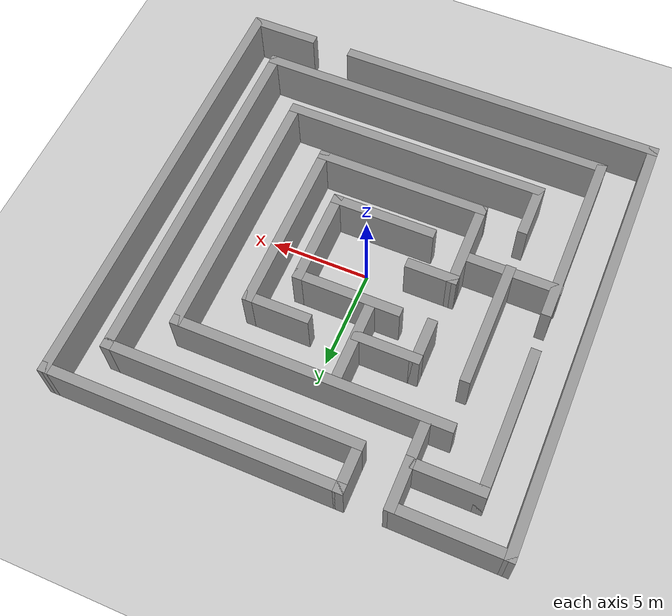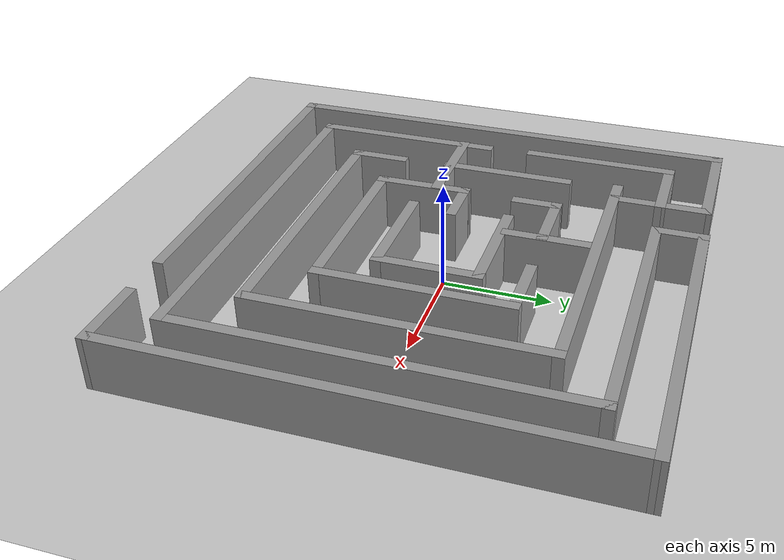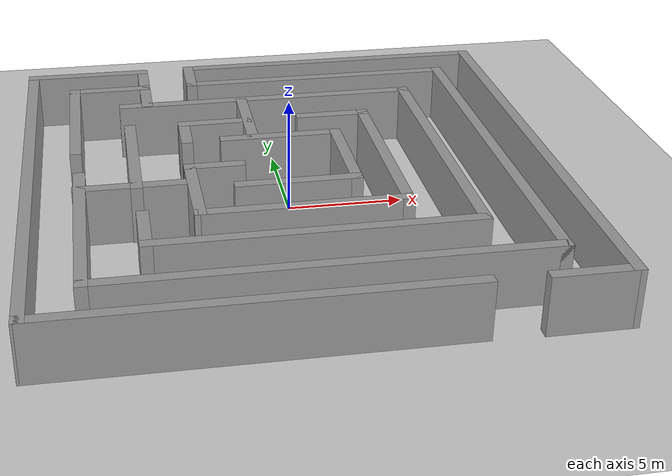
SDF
<sdf version="1.7">
 <world name="default">
  <light name="sun" type="directional">
   <pose>0 0 10 0 -0 0</pose>
   <diffuse>0.8 0.8 0.8 1</diffuse>
   <specular>0.2 0.2 0.2 1</specular>
   <attenuation>
    <range>1000</range>
    <constant>0.9</constant>
    <linear>0.01</linear>
    <quadratic>0.001</quadratic>
   </attenuation>
   <direction>-0.5 0.1 -0.9</direction>
   <spot><inner_angle>0</inner_angle><outer_angle>0</outer_angle><falloff>0</falloff></spot>
  </light>
  <model name="ground_plane">
   <static>1</static>
   <link name="link">
    <collision name="collision">
     <geometry><plane><normal>0 0 1</normal><size>100 100</size></plane></geometry>
     <surface>
      <contact><collide_bitmask>65535</collide_bitmask></contact>
      <friction><ode><mu>100</mu><mu2>50</mu2></ode></friction>
     </surface>
    </collision>
    <visual name="visual">
     <cast_shadows>0</cast_shadows>
     <geometry><plane><normal>0 0 1</normal><size>100 100</size></plane></geometry>
     <material>
      <script><uri>file://media/materials/scripts/gazebo.material</uri><name>Gazebo/Grey</name></script>
     </material>
    </visual>
   </link>
  </model>
  <gravity>0 0 -9.8</gravity>
  <magnetic_field>6e-06 2.3e-05 -4.2e-05</magnetic_field>
  <atmosphere type="adiabatic"/>
  <physics type="ode">
   <max_step_size>0.001</max_step_size>
   <real_time_factor>1</real_time_factor>
   <real_time_update_rate>1000</real_time_update_rate>
  </physics>
  <scene><ambient>0.4 0.4 0.4 1</ambient><background>0.7 0.7 0.7 1</background><shadows>1</shadows></scene>
  <spherical_coordinates>
   <surface_model>EARTH_WGS84</surface_model>
   <latitude_deg>0</latitude_deg>
   <longitude_deg>0</longitude_deg>
   <elevation>0</elevation>
   <heading_deg>0</heading_deg>
  </spherical_coordinates>
  <model name="maze_1">
   <model name="maze_1">
    <link name="Wall_1">
     <collision name="Wall_1_Collision">
      <geometry><box><size>5.43 0.5 2.5</size></box></geometry>
      <pose>0 0 1.25 0 -0 0</pose>
     </collision>
     <visual name="Wall_1_Visual">
      <pose>0 0 1.25 0 -0 0</pose>
      <geometry><box><size>5.43 0.5 2.5</size></box></geometry>
      <material>
       <script><uri>file://media/materials/scripts/gazebo.material</uri><name>Gazebo/Grey</name></script>
       <ambient>1 1 1 1</ambient>
      </material>
      <meta><layer>0</layer></meta>
     </visual>
     <pose>0.007699 2.3205 0 0 -0 0</pose>
    </link>
    <link name="Wall_10">
     <collision name="Wall_10_Collision">
      <geometry><box><size>2.59977 0.5 2.5</size></box></geometry>
      <pose>0 0 1.25 0 -0 0</pose>
     </collision>
     <visual name="Wall_10_Visual">
      <pose>0 0 1.25 0 -0 0</pose>
      <geometry><box><size>2.59977 0.5 2.5</size></box></geometry>
      <material>
       <script><uri>file://media/materials/scripts/gazebo.material</uri><name>Gazebo/Grey</name></script>
       <ambient>1 1 1 1</ambient>
      </material>
      <meta><layer>0</layer></meta>
     </visual>
     <pose>-3.2283 -0.2365 0 0 -0 3.14159</pose>
    </link>
    <link name="Wall_11">
     <collision name="Wall_11_Collision">
      <geometry><box><size>4.60034 0.5 2.5</size></box></geometry>
      <pose>0 0 1.25 0 -0 0</pose>
     </collision>
     <visual name="Wall_11_Visual">
      <pose>0 0 1.25 0 -0 0</pose>
      <geometry><box><size>4.60034 0.5 2.5</size></box></geometry>
      <material>
       <script><uri>file://media/materials/scripts/gazebo.material</uri><name>Gazebo/Grey</name></script>
       <ambient>1 1 1 1</ambient>
      </material>
      <meta><layer>0</layer></meta>
     </visual>
     <pose>-4.2518 -2.2865 0 0 -0 -1.55787</pose>
    </link>
    <link name="Wall_12">
     <collision name="Wall_12_Collision">
      <geometry><box><size>8.85013 0.5 2.5</size></box></geometry>
      <pose>0 0 1.25 0 -0 0</pose>
     </collision>
     <visual name="Wall_12_Visual">
      <pose>0 0 1.25 0 -0 0</pose>
      <geometry><box><size>8.85013 0.5 2.5</size></box></geometry>
      <material>
       <script><uri>file://media/materials/scripts/gazebo.material</uri><name>Gazebo/Grey</name></script>
       <ambient>1 1 1 1</ambient>
      </material>
      <meta><layer>0</layer></meta>
     </visual>
     <pose>-0.050301 -4.3365 0 0 -0 0</pose>
    </link>
    <link name="Wall_13">
     <collision name="Wall_13_Collision">
      <geometry><box><size>9.10033 0.5 2.5</size></box></geometry>
      <pose>0 0 1.25 0 -0 0</pose>
     </collision>
     <visual name="Wall_13_Visual">
      <pose>0 0 1.25 0 -0 0</pose>
      <geometry><box><size>9.10033 0.5 2.5</size></box></geometry>
      <material>
       <script><uri>file://media/materials/scripts/gazebo.material</uri><name>Gazebo/Grey</name></script>
       <ambient>1 1 1 1</ambient>
      </material>
      <meta><layer>0</layer></meta>
     </visual>
     <pose>4.1247 -0.0365 0 0 -0 1.5708</pose>
    </link>
    <link name="Wall_14">
     <collision name="Wall_14_Collision">
      <geometry><box><size>3.34987 0.5 2.5</size></box></geometry>
      <pose>0 0 1.25 0 -0 0</pose>
     </collision>
     <visual name="Wall_14_Visual">
      <pose>0 0 1.25 0 -0 0</pose>
      <geometry><box><size>3.34987 0.5 2.5</size></box></geometry>
      <material>
       <script><uri>file://media/materials/scripts/gazebo.material</uri><name>Gazebo/Grey</name></script>
       <ambient>1 1 1 1</ambient>
      </material>
      <meta><layer>0</layer></meta>
     </visual>
     <pose>2.6997 4.2635 0 0 -0 3.14159</pose>
    </link>
    <link name="Wall_16">
     <collision name="Wall_16_Collision">
      <geometry><box><size>2.35 0.5 2.5</size></box></geometry>
      <pose>0 0 1.25 0 -0 0</pose>
     </collision>
     <visual name="Wall_16_Visual">
      <pose>0 0 1.25 0 -0 0</pose>
      <geometry><box><size>2.35 0.5 2.5</size></box></geometry>
      <material>
       <script><uri>file://media/materials/scripts/gazebo.material</uri><name>Gazebo/Grey</name></script>
       <ambient>1 1 1 1</ambient>
      </material>
      <meta><layer>0</layer></meta>
     </visual>
     <pose>-4.1623 3.2805 0 0 -0 1.5708</pose>
    </link>
    <link name="Wall_17">
     <collision name="Wall_17_Collision">
      <geometry><box><size>3.35048 0.5 2.5</size></box></geometry>
      <pose>0 0 1.25 0 -0 0</pose>
     </collision>
     <visual name="Wall_17_Visual">
      <pose>0 0 1.25 0 -0 0</pose>
      <geometry><box><size>3.35048 0.5 2.5</size></box></geometry>
      <material>
       <script><uri>file://media/materials/scripts/gazebo.material</uri><name>Gazebo/Grey</name></script>
       <ambient>1 1 1 1</ambient>
      </material>
      <meta><layer>0</layer></meta>
     </visual>
     <pose>-2.7373 4.2055 0 0 -0 0</pose>
    </link>
    <link name="Wall_19">
     <collision name="Wall_19_Collision">
      <geometry><box><size>4.35048 0.5 2.5</size></box></geometry>
      <pose>0 0 1.25 0 -0 0</pose>
     </collision>
     <visual name="Wall_19_Visual">
      <pose>0 0 1.25 0 -0 0</pose>
      <geometry><box><size>4.35048 0.5 2.5</size></box></geometry>
      <material>
       <script><uri>file://media/materials/scripts/gazebo.material</uri><name>Gazebo/Grey</name></script>
       <ambient>1 1 1 1</ambient>
      </material>
      <meta><layer>0</layer></meta>
     </visual>
     <pose>-1.2263 4.5185 0 0 -0 1.5708</pose>
    </link>
    <link name="Wall_2">
     <collision name="Wall_2_Collision">
      <geometry><box><size>5.01231 0.5 2.5</size></box></geometry>
      <pose>0 0 1.25 0 -0 0</pose>
     </collision>
     <visual name="Wall_2_Visual">
      <pose>0 0 1.25 0 -0 0</pose>
      <geometry><box><size>5.01231 0.5 2.5</size></box></geometry>
      <material>
       <script><uri>file://media/materials/scripts/gazebo.material</uri><name>Gazebo/Grey</name></script>
       <ambient>1 1 1 1</ambient>
      </material>
      <meta><layer>0</layer></meta>
     </visual>
     <pose>2.4727 0.0645 0 0 -0 -1.5708</pose>
    </link>
    <link name="Wall_21">
     <collision name="Wall_21_Collision">
      <geometry><box><size>7.35 0.5 2.5</size></box></geometry>
      <pose>0 0 1.25 0 -0 0</pose>
     </collision>
     <visual name="Wall_21_Visual">
      <pose>0 0 1.25 0 -0 0</pose>
      <geometry><box><size>7.35 0.5 2.5</size></box></geometry>
      <material>
       <script><uri>file://media/materials/scripts/gazebo.material</uri><name>Gazebo/Grey</name></script>
       <ambient>1 1 1 1</ambient>
      </material>
      <meta><layer>0</layer></meta>
     </visual>
     <pose>-9.0023 5.3845 0 0 -0 1.5708</pose>
    </link>
    <link name="Wall_22">
     <collision name="Wall_22_Collision">
      <geometry><box><size>3.85 0.5 2.5</size></box></geometry>
      <pose>0 0 1.25 0 -0 0</pose>
     </collision>
     <visual name="Wall_22_Visual">
      <pose>0 0 1.25 0 -0 0</pose>
      <geometry><box><size>3.85 0.5 2.5</size></box></geometry>
      <material>
       <script><uri>file://media/materials/scripts/gazebo.material</uri><name>Gazebo/Grey</name></script>
       <ambient>1 1 1 1</ambient>
      </material>
      <meta><layer>0</layer></meta>
     </visual>
     <pose>-7.3273 8.8095 0 0 -0 0</pose>
    </link>
    <link name="Wall_23">
     <collision name="Wall_23_Collision">
      <geometry><box><size>2.60032 0.5 2.5</size></box></geometry>
      <pose>0 0 1.25 0 -0 0</pose>
     </collision>
     <visual name="Wall_23_Visual">
      <pose>0 0 1.25 0 -0 0</pose>
      <geometry><box><size>2.60032 0.5 2.5</size></box></geometry>
      <material>
       <script><uri>file://media/materials/scripts/gazebo.material</uri><name>Gazebo/Grey</name></script>
       <ambient>1 1 1 1</ambient>
      </material>
      <meta><layer>0</layer></meta>
     </visual>
     <pose>-5.6523 7.7595 0 0 -0 -1.5708</pose>
    </link>
    <link name="Wall_25">
     <collision name="Wall_25_Collision">
      <geometry><box><size>2.59969 0.5 2.5</size></box></geometry>
      <pose>0 0 1.25 0 -0 0</pose>
     </collision>
     <visual name="Wall_25_Visual">
      <pose>0 0 1.25 0 -0 0</pose>
      <geometry><box><size>2.59969 0.5 2.5</size></box></geometry>
      <material>
       <script><uri>file://media/materials/scripts/gazebo.material</uri><name>Gazebo/Grey</name></script>
       <ambient>1 1 1 1</ambient>
      </material>
      <meta><layer>0</layer></meta>
     </visual>
     <pose>-5.6523 9.8595 0 0 -0 1.5708</pose>
    </link>
    <link name="Wall_26">
     <collision name="Wall_26_Collision">
      <geometry><box><size>5.82705 0.5 2.5</size></box></geometry>
      <pose>0 0 1.25 0 -0 0</pose>
     </collision>
     <visual name="Wall_26_Visual">
      <pose>0 0 1.25 0 -0 0</pose>
      <geometry><box><size>5.82705 0.5 2.5</size></box></geometry>
      <material>
       <script><uri>file://media/materials/scripts/gazebo.material</uri><name>Gazebo/Grey</name></script>
       <ambient>1 1 1 1</ambient>
      </material>
      <meta><layer>0</layer></meta>
     </visual>
     <pose>-8.3158 10.921 0 0 -0 3.13727</pose>
    </link>
    <link name="Wall_27">
     <collision name="Wall_27_Collision">
      <geometry><box><size>22.3506 0.5 2.5</size></box></geometry>
      <pose>0 0 1.25 0 -0 0</pose>
     </collision>
     <visual name="Wall_27_Visual">
      <pose>0 0 1.25 0 -0 0</pose>
      <geometry><box><size>22.3506 0.5 2.5</size></box></geometry>
      <material>
       <script><uri>file://media/materials/scripts/gazebo.material</uri><name>Gazebo/Grey</name></script>
       <ambient>1 1 1 1</ambient>
      </material>
      <meta><layer>0</layer></meta>
     </visual>
     <pose>-10.9793 0.007 0 0 -0 -1.5708</pose>
    </link>
    <link name="Wall_28">
     <collision name="Wall_28_Collision">
      <geometry><box><size>16.8271 0.5 2.5</size></box></geometry>
      <pose>0 0 1.25 0 -0 0</pose>
     </collision>
     <visual name="Wall_28_Visual">
      <pose>0 0 1.25 0 -0 0</pose>
      <geometry><box><size>16.8271 0.5 2.5</size></box></geometry>
      <material>
       <script><uri>file://media/materials/scripts/gazebo.material</uri><name>Gazebo/Grey</name></script>
       <ambient>1 1 1 1</ambient>
      </material>
      <meta><layer>0</layer></meta>
     </visual>
     <pose>-2.8158 -10.9295 0 0 -0 -0.001347</pose>
    </link>
    <link name="Wall_3">
     <collision name="Wall_3_Collision">
      <geometry><box><size>5.35 0.5 2.5</size></box></geometry>
      <pose>0 0 1.25 0 -0 0</pose>
     </collision>
     <visual name="Wall_3_Visual">
      <pose>0 0 1.25 0 -0 0</pose>
      <geometry><box><size>5.35 0.5 2.5</size></box></geometry>
      <material>
       <script><uri>file://media/materials/scripts/gazebo.material</uri><name>Gazebo/Grey</name></script>
       <ambient>1 1 1 1</ambient>
      </material>
      <meta><layer>0</layer></meta>
     </visual>
     <pose>0.047699 -2.1915 0 0 -0 3.14159</pose>
    </link>
    <link name="Wall_30">
     <collision name="Wall_30_Collision">
      <geometry><box><size>9.1 0.5 2.5</size></box></geometry>
      <pose>0 0 1.25 0 -0 0</pose>
     </collision>
     <visual name="Wall_30_Visual">
      <pose>0 0 1.25 0 -0 0</pose>
      <geometry><box><size>9.1 0.5 2.5</size></box></geometry>
      <material>
       <script><uri>file://media/materials/scripts/gazebo.material</uri><name>Gazebo/Grey</name></script>
       <ambient>1 1 1 1</ambient>
      </material>
      <meta><layer>0</layer></meta>
     </visual>
     <pose>-8.8703 -4.6415 0 0 -0 -1.5708</pose>
    </link>
    <link name="Wall_31">
     <collision name="Wall_31_Collision">
      <geometry><box><size>18.35 0.5 2.5</size></box></geometry>
      <pose>0 0 1.25 0 -0 0</pose>
     </collision>
     <visual name="Wall_31_Visual">
      <pose>0 0 1.25 0 -0 0</pose>
      <geometry><box><size>18.35 0.5 2.5</size></box></geometry>
      <material>
       <script><uri>file://media/materials/scripts/gazebo.material</uri><name>Gazebo/Grey</name></script>
       <ambient>1 1 1 1</ambient>
      </material>
      <meta><layer>0</layer></meta>
     </visual>
     <pose>0.054699 -8.9415 0 0 -0 0</pose>
    </link>
    <link name="Wall_32">
     <collision name="Wall_32_Collision">
      <geometry><box><size>18.35 0.5 2.5</size></box></geometry>
      <pose>0 0 1.25 0 -0 0</pose>
     </collision>
     <visual name="Wall_32_Visual">
      <pose>0 0 1.25 0 -0 0</pose>
      <geometry><box><size>18.35 0.5 2.5</size></box></geometry>
      <material>
       <script><uri>file://media/materials/scripts/gazebo.material</uri><name>Gazebo/Grey</name></script>
       <ambient>1 1 1 1</ambient>
      </material>
      <meta><layer>0</layer></meta>
     </visual>
     <pose>8.9797 -0.0165 0 0 -0 1.5708</pose>
    </link>
    <link name="Wall_33">
     <collision name="Wall_33_Collision">
      <geometry><box><size>12.85 0.5 2.5</size></box></geometry>
      <pose>0 0 1.25 0 -0 0</pose>
     </collision>
     <visual name="Wall_33_Visual">
      <pose>0 0 1.25 0 -0 0</pose>
      <geometry><box><size>12.85 0.5 2.5</size></box></geometry>
      <material>
       <script><uri>file://media/materials/scripts/gazebo.material</uri><name>Gazebo/Grey</name></script>
       <ambient>1 1 1 1</ambient>
      </material>
      <meta><layer>0</layer></meta>
     </visual>
     <pose>2.8047 8.9085 0 0 -0 3.14159</pose>
    </link>
    <link name="Wall_34">
     <collision name="Wall_34_Collision">
      <geometry><box><size>2.6 0.5 2.5</size></box></geometry>
      <pose>0 0 1.25 0 -0 0</pose>
     </collision>
     <visual name="Wall_34_Visual">
      <pose>0 0 1.25 0 -0 0</pose>
      <geometry><box><size>2.6 0.5 2.5</size></box></geometry>
      <material>
       <script><uri>file://media/materials/scripts/gazebo.material</uri><name>Gazebo/Grey</name></script>
       <ambient>1 1 1 1</ambient>
      </material>
      <meta><layer>0</layer></meta>
     </visual>
     <pose>-3.3703 9.9585 0 0 -0 1.5708</pose>
    </link>
    <link name="Wall_35">
     <collision name="Wall_35_Collision">
      <geometry><box><size>14.85 0.5 2.5</size></box></geometry>
      <pose>0 0 1.25 0 -0 0</pose>
     </collision>
     <visual name="Wall_35_Visual">
      <pose>0 0 1.25 0 -0 0</pose>
      <geometry><box><size>14.85 0.5 2.5</size></box></geometry>
      <material>
       <script><uri>file://media/materials/scripts/gazebo.material</uri><name>Gazebo/Grey</name></script>
       <ambient>1 1 1 1</ambient>
      </material>
      <meta><layer>0</layer></meta>
     </visual>
     <pose>3.8047 11.0085 0 0 -0 0</pose>
    </link>
    <link name="Wall_36">
     <collision name="Wall_36_Collision">
      <geometry><box><size>22.5171 0.5 2.5</size></box></geometry>
      <pose>0 0 1.25 0 -0 0</pose>
     </collision>
     <visual name="Wall_36_Visual">
      <pose>0 0 1.25 0 -0 0</pose>
      <geometry><box><size>22.5171 0.5 2.5</size></box></geometry>
      <material>
       <script><uri>file://media/materials/scripts/gazebo.material</uri><name>Gazebo/Grey</name></script>
       <ambient>1 1 1 1</ambient>
      </material>
      <meta><layer>0</layer></meta>
     </visual>
     <pose>10.9497 -0 0 0 -0 -1.57352</pose>
    </link>
    <link name="Wall_37">
     <collision name="Wall_37_Collision">
      <geometry><box><size>3.60011 0.5 2.5</size></box></geometry>
      <pose>0 0 1.25 0 -0 0</pose>
     </collision>
     <visual name="Wall_37_Visual">
      <pose>0 0 1.25 0 -0 0</pose>
      <geometry><box><size>3.60011 0.5 2.5</size></box></geometry>
      <material>
       <script><uri>file://media/materials/scripts/gazebo.material</uri><name>Gazebo/Grey</name></script>
       <ambient>1 1 1 1</ambient>
      </material>
      <meta><layer>0</layer></meta>
     </visual>
     <pose>9.3697 -11.0085 0 0 -0 3.14159</pose>
    </link>
    <link name="Wall_39">
     <collision name="Wall_39_Collision">
      <geometry><box><size>5.10048 0.5 2.5</size></box></geometry>
      <pose>0 0 1.25 0 -0 0</pose>
     </collision>
     <visual name="Wall_39_Visual">
      <pose>0 0 1.25 0 -0 0</pose>
      <geometry><box><size>5.10048 0.5 2.5</size></box></geometry>
      <material>
       <script><uri>file://media/materials/scripts/gazebo.material</uri><name>Gazebo/Grey</name></script>
       <ambient>1 1 1 1</ambient>
      </material>
      <meta><layer>0</layer></meta>
     </visual>
     <pose>-6.6233 -1.6115 0 0 -0 0</pose>
    </link>
    <link name="Wall_41">
     <collision name="Wall_41_Collision">
      <geometry><box><size>6.34952 0.5 2.5</size></box></geometry>
      <pose>0 0 1.25 0 -0 0</pose>
     </collision>
     <visual name="Wall_41_Visual">
      <pose>0 0 1.25 0 -0 0</pose>
      <geometry><box><size>6.34952 0.5 2.5</size></box></geometry>
      <material>
       <script><uri>file://media/materials/scripts/gazebo.material</uri><name>Gazebo/Grey</name></script>
       <ambient>1 1 1 1</ambient>
      </material>
      <meta><layer>0</layer></meta>
     </visual>
     <pose>-6.5683 1.2555 0 0 -0 -1.5708</pose>
    </link>
    <link name="Wall_5">
     <collision name="Wall_5_Collision">
      <geometry><box><size>13.8503 0.5 2.5</size></box></geometry>
      <pose>0 0 1.25 0 -0 0</pose>
     </collision>
     <visual name="Wall_5_Visual">
      <pose>0 0 1.25 0 -0 0</pose>
      <geometry><box><size>13.8503 0.5 2.5</size></box></geometry>
      <material>
       <script><uri>file://media/materials/scripts/gazebo.material</uri><name>Gazebo/Grey</name></script>
       <ambient>1 1 1 1</ambient>
      </material>
      <meta><layer>0</layer></meta>
     </visual>
     <pose>-0.026301 6.6405 0 0 -0 0</pose>
    </link>
    <link name="Wall_6">
     <collision name="Wall_6_Collision">
      <geometry><box><size>13.5997 0.5 2.5</size></box></geometry>
      <pose>0 0 1.25 0 -0 0</pose>
     </collision>
     <visual name="Wall_6_Visual">
      <pose>0 0 1.25 0 -0 0</pose>
      <geometry><box><size>13.5997 0.5 2.5</size></box></geometry>
      <material>
       <script><uri>file://media/materials/scripts/gazebo.material</uri><name>Gazebo/Grey</name></script>
       <ambient>1 1 1 1</ambient>
      </material>
      <meta><layer>0</layer></meta>
     </visual>
     <pose>6.6487 0.0905 0 0 -0 -1.5708</pose>
    </link>
    <link name="Wall_7">
     <collision name="Wall_7_Collision">
      <geometry><box><size>13.5997 0.5 2.5</size></box></geometry>
      <pose>0 0 1.25 0 -0 0</pose>
     </collision>
     <visual name="Wall_7_Visual">
      <pose>0 0 1.25 0 -0 0</pose>
      <geometry><box><size>13.5997 0.5 2.5</size></box></geometry>
      <material>
       <script><uri>file://media/materials/scripts/gazebo.material</uri><name>Gazebo/Grey</name></script>
       <ambient>1 1 1 1</ambient>
      </material>
      <meta><layer>0</layer></meta>
     </visual>
     <pose>0.098699 -6.4595 0 0 -0 3.14159</pose>
    </link>
    <link name="Wall_8">
     <collision name="Wall_8_Collision">
      <geometry><box><size>2.85033 0.5 2.5</size></box></geometry>
      <pose>0 0 1.25 0 -0 0</pose>
     </collision>
     <visual name="Wall_8_Visual">
      <pose>0 0 1.25 0 -0 0</pose>
      <geometry><box><size>2.85033 0.5 2.5</size></box></geometry>
      <material>
       <script><uri>file://media/materials/scripts/gazebo.material</uri><name>Gazebo/Grey</name></script>
       <ambient>1 1 1 1</ambient>
      </material>
      <meta><layer>0</layer></meta>
     </visual>
     <pose>-6.4513 -5.2845 0 0 -0 1.5708</pose>
    </link>
    <static>1</static>
   </model>
   <static>0</static>
   <pose>0.006389 -0.019427 0 0 -0 0</pose>
  </model>
 </world>
</sdf>
